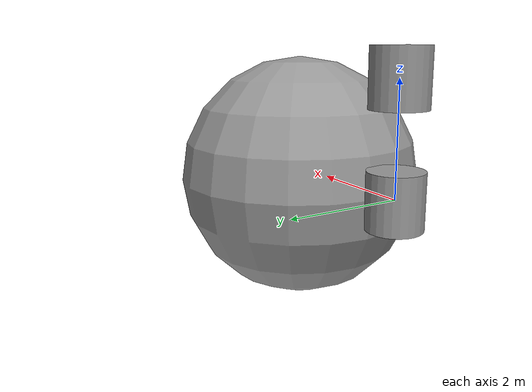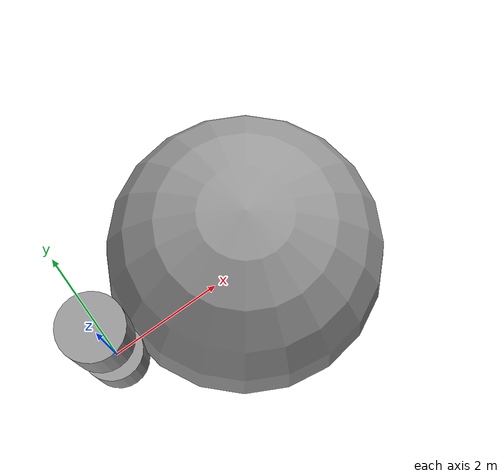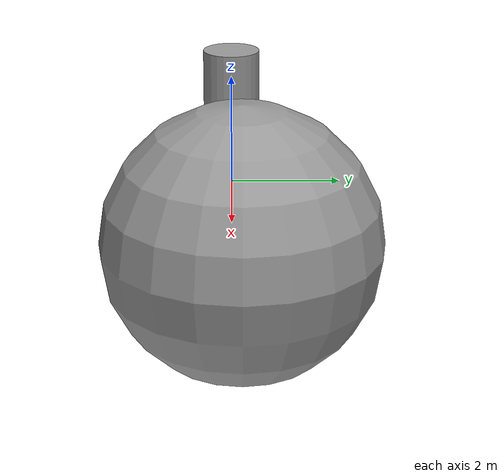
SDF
<?xml version='1.0'?>
<sdf version='1.6'>
  <model name='water_deposit'>
    <link name='link'>
      <pose frame=''>2.74404 0.169518 -0.065826 0 -0 0</pose>
      <inertial>
        <mass>1</mass>
        <inertia>
          <ixx>0.1</ixx>
          <ixy>0</ixy>
          <ixz>0</ixz>
          <iyy>0.1</iyy>
          <iyz>0</iyz>
          <izz>0.1</izz>
        </inertia>
      </inertial>
      <self_collide>0</self_collide>
      <kinematic>0</kinematic>
      <visual name='visual'>
        <geometry>
          <sphere>
            <radius>2.38345</radius>
          </sphere>
        </geometry>
        <material>
          <script>
            <name>Gazebo/Grey</name>
            <uri>file://media/materials/scripts/gazebo.material</uri>
          </script>
          <ambient>0.3 0.3 0.3 1</ambient>
          <diffuse>0.7 0.7 0.7 1</diffuse>
          <specular>0.01 0.01 0.01 1</specular>
          <emissive>0 0 0 1</emissive>
        </material>
        <pose frame=''>0 0 0 0 -0 0</pose>
        <transparency>0</transparency>
        <cast_shadows>1</cast_shadows>
      </visual>
      <collision name='collision'>
        <laser_retro>0</laser_retro>
        <max_contacts>10</max_contacts>
        <pose frame=''>0 0 0 0 -0 0</pose>
        <geometry>
          <sphere>
            <radius>2.38345</radius>
          </sphere>
        </geometry>
        <surface>
          <friction>
            <ode>
              <mu>1</mu>
              <mu2>1</mu2>
              <fdir1>0 0 0</fdir1>
              <slip1>0</slip1>
              <slip2>0</slip2>
            </ode>
            <torsional>
              <coefficient>1</coefficient>
              <patch_radius>0</patch_radius>
              <surface_radius>0</surface_radius>
              <use_patch_radius>1</use_patch_radius>
              <ode>
                <slip>0</slip>
              </ode>
            </torsional>
          </friction>
          <bounce>
            <restitution_coefficient>0</restitution_coefficient>
            <threshold>1e+06</threshold>
          </bounce>
          <contact>
            <collide_without_contact>0</collide_without_contact>
            <collide_without_contact_bitmask>1</collide_without_contact_bitmask>
            <collide_bitmask>1</collide_bitmask>
            <ode>
              <soft_cfm>0</soft_cfm>
              <soft_erp>0.2</soft_erp>
              <kp>1e+13</kp>
              <kd>1</kd>
              <max_vel>0.01</max_vel>
              <min_depth>0</min_depth>
            </ode>
            <bullet>
              <split_impulse>1</split_impulse>
              <split_impulse_penetration_threshold>-0.01</split_impulse_penetration_threshold>
              <soft_cfm>0</soft_cfm>
              <soft_erp>0.2</soft_erp>
              <kp>1e+13</kp>
              <kd>1</kd>
            </bullet>
          </contact>
        </surface>
      </collision>
    </link>
    <link name='water'>
      <pose frame=''>0 0 2 0 -0 0</pose>
      <inertial>
        <mass>1</mass>
        <inertia>
          <ixx>0.145833</ixx>
          <ixy>0</ixy>
          <ixz>0</ixz>
          <iyy>0.145833</iyy>
          <iyz>0</iyz>
          <izz>0.125</izz>
        </inertia>
      </inertial>
      <visual name='visual'>
        <pose frame=''>0 0 0 0 -0 0</pose>
        <geometry>
          <cylinder>
            <radius>0.5</radius>
            <length>1</length>
          </cylinder>
        </geometry>
        <material>
          <lighting>1</lighting>
          <script>
            <uri>file://media/materials/scripts/gazebo.material</uri>
            <name>Gazebo/Grey</name>
          </script>
          <ambient>0.3 0.3 0.3 1</ambient>
          <diffuse>0.7 0.7 0.7 1</diffuse>
          <specular>0.01 0.01 0.01 1</specular>
          <emissive>0 0 0 1</emissive>
        </material>
        <transparency>0</transparency>
        <cast_shadows>1</cast_shadows>
      </visual>
      <collision name='collision'>
        <laser_retro>0</laser_retro>
        <max_contacts>10</max_contacts>
        <pose frame=''>0 0 0 0 -0 0</pose>
        <geometry>
          <cylinder>
            <radius>0.5</radius>
            <length>1</length>
          </cylinder>
        </geometry>
        <surface>
          <friction>
            <ode>
              <mu>1</mu>
              <mu2>1</mu2>
              <fdir1>0 0 0</fdir1>
              <slip1>0</slip1>
              <slip2>0</slip2>
            </ode>
            <torsional>
              <coefficient>1</coefficient>
              <patch_radius>0</patch_radius>
              <surface_radius>0</surface_radius>
              <use_patch_radius>1</use_patch_radius>
              <ode>
                <slip>0</slip>
              </ode>
            </torsional>
          </friction>
          <bounce>
            <restitution_coefficient>0</restitution_coefficient>
            <threshold>1e+06</threshold>
          </bounce>
          <contact>
            <collide_without_contact>0</collide_without_contact>
            <collide_without_contact_bitmask>1</collide_without_contact_bitmask>
            <collide_bitmask>1</collide_bitmask>
            <ode>
              <soft_cfm>0</soft_cfm>
              <soft_erp>0.2</soft_erp>
              <kp>1e+13</kp>
              <kd>1</kd>
              <max_vel>0.01</max_vel>
              <min_depth>0</min_depth>
            </ode>
            <bullet>
              <split_impulse>1</split_impulse>
              <split_impulse_penetration_threshold>-0.01</split_impulse_penetration_threshold>
              <soft_cfm>0</soft_cfm>
              <soft_erp>0.2</soft_erp>
              <kp>1e+13</kp>
              <kd>1</kd>
            </bullet>
          </contact>
        </surface>
      </collision>
    </link>
    <link name='support'>
      <pose frame=''>0 0 0 0 -0 0</pose>
      <inertial>
        <mass>1</mass>
        <inertia>
          <ixx>0.145833</ixx>
          <ixy>0</ixy>
          <ixz>0</ixz>
          <iyy>0.145833</iyy>
          <iyz>0</iyz>
          <izz>0.125</izz>
        </inertia>
      </inertial>
      <visual name='visual'>
        <pose frame=''>0 0 0 0 -0 0</pose>
        <geometry>
          <cylinder>
            <radius>0.5</radius>
            <length>1</length>
          </cylinder>
        </geometry>
        <material>
          <lighting>1</lighting>
          <script>
            <uri>file://media/materials/scripts/gazebo.material</uri>
            <name>Gazebo/Grey</name>
          </script>
          <ambient>0.3 0.3 0.3 1</ambient>
          <diffuse>0.7 0.7 0.7 1</diffuse>
          <specular>0.01 0.01 0.01 1</specular>
          <emissive>0 0 0 1</emissive>
        </material>
        <transparency>0</transparency>
        <cast_shadows>1</cast_shadows>
      </visual>
      <collision name='collision'>
        <laser_retro>0</laser_retro>
        <max_contacts>10</max_contacts>
        <pose frame=''>0 0 0 0 -0 0</pose>
        <geometry>
          <cylinder>
            <radius>0.5</radius>
            <length>1</length>
          </cylinder>
        </geometry>
        <surface>
          <friction>
            <ode>
              <mu>1</mu>
              <mu2>1</mu2>
              <fdir1>0 0 0</fdir1>
              <slip1>0</slip1>
              <slip2>0</slip2>
            </ode>
            <torsional>
              <coefficient>1</coefficient>
              <patch_radius>0</patch_radius>
              <surface_radius>0</surface_radius>
              <use_patch_radius>1</use_patch_radius>
              <ode>
                <slip>0</slip>
              </ode>
            </torsional>
          </friction>
          <bounce>
            <restitution_coefficient>0</restitution_coefficient>
            <threshold>1e+06</threshold>
          </bounce>
          <contact>
            <collide_without_contact>0</collide_without_contact>
            <collide_without_contact_bitmask>1</collide_without_contact_bitmask>
            <collide_bitmask>1</collide_bitmask>
            <ode>
              <soft_cfm>0</soft_cfm>
              <soft_erp>0.2</soft_erp>
              <kp>1e+13</kp>
              <kd>1</kd>
              <max_vel>0.01</max_vel>
              <min_depth>0</min_depth>
            </ode>
            <bullet>
              <split_impulse>1</split_impulse>
              <split_impulse_penetration_threshold>-0.01</split_impulse_penetration_threshold>
              <soft_cfm>0</soft_cfm>
              <soft_erp>0.2</soft_erp>
              <kp>1e+13</kp>
              <kd>1</kd>
            </bullet>
          </contact>
        </surface>
      </collision>
    </link>
    <static>0</static>
    <allow_auto_disable>1</allow_auto_disable>
  </model>
</sdf>
